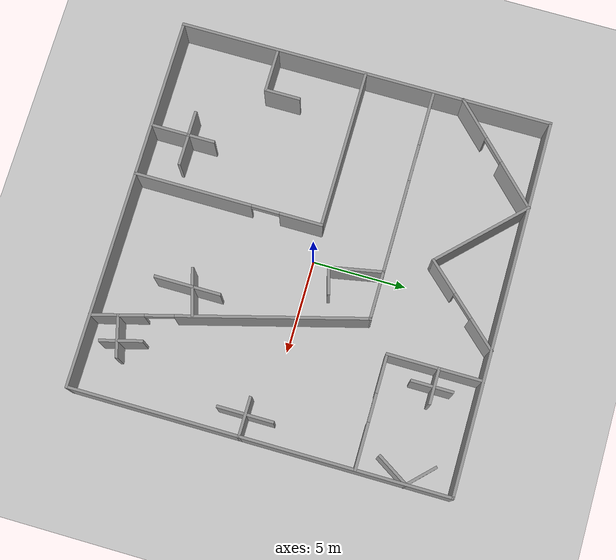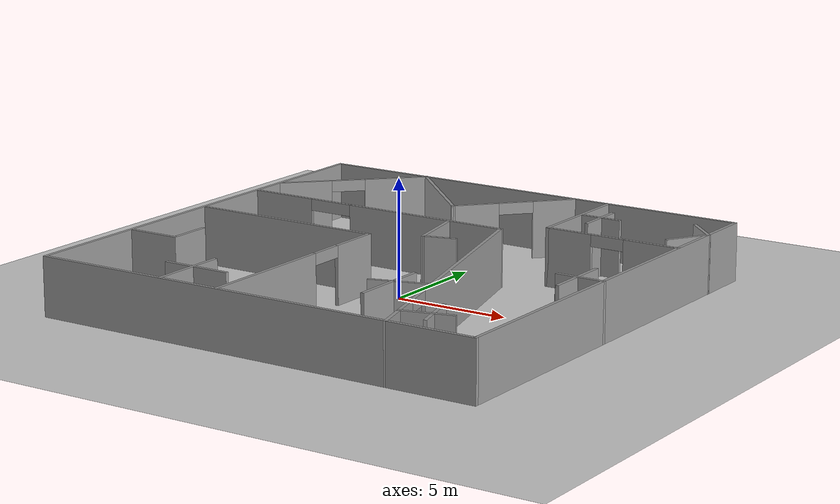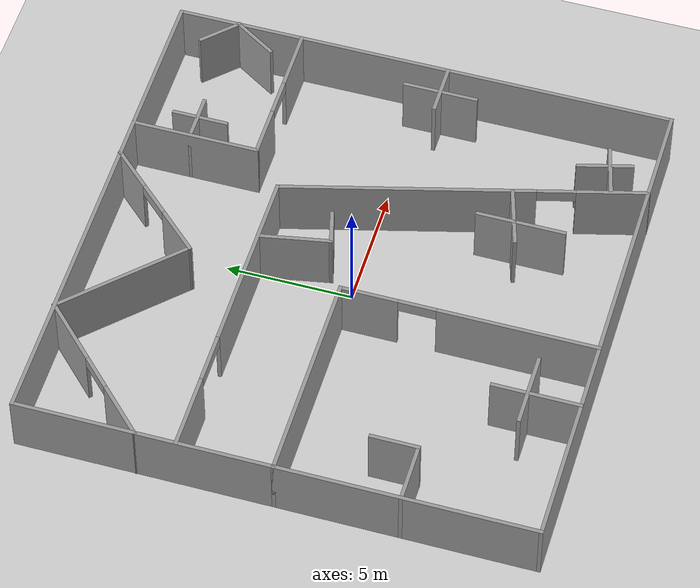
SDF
<sdf version="1.6">
 <world name="default">
  <light name="sun" type="directional">
   <pose>0 0 10 0 -0 0</pose>
   <diffuse>0.8 0.8 0.8 1</diffuse>
   <specular>0.2 0.2 0.2 1</specular>
   <attenuation>
    <range>1000</range>
    <constant>0.9</constant>
    <linear>0.01</linear>
    <quadratic>0.001</quadratic>
   </attenuation>
   <direction>-0.5 0.1 -0.9</direction>
  </light>
  <model name="ground_plane">
   <static>1</static>
   <link name="link">
    <collision name="collision">
     <geometry><plane><normal>0 0 1</normal><size>100 100</size></plane></geometry>
     <surface>
      <contact><collide_bitmask>65535</collide_bitmask></contact>
      <friction><ode><mu>100</mu><mu2>50</mu2></ode></friction>
     </surface>
    </collision>
    <visual name="visual">
     <cast_shadows>0</cast_shadows>
     <geometry><plane><normal>0 0 1</normal><size>100 100</size></plane></geometry>
     <material>
      <script><uri>file://media/materials/scripts/gazebo.material</uri><name>Gazebo/Grey</name></script>
     </material>
    </visual>
   </link>
  </model>
  <gravity>0 0 -9.8</gravity>
  <magnetic_field>6e-06 2.3e-05 -4.2e-05</magnetic_field>
  <atmosphere type="adiabatic"/>
  <physics name="default_physics" default="0" type="ode">
   <max_step_size>0.001</max_step_size>
   <real_time_factor>1</real_time_factor>
   <real_time_update_rate>1000</real_time_update_rate>
  </physics>
  <scene><ambient>0.4 0.4 0.4 1</ambient><background>0.7 0.7 0.7 1</background><shadows>1</shadows></scene>
  <audio><device>default</device></audio>
  <spherical_coordinates>
   <surface_model>EARTH_WGS84</surface_model>
   <latitude_deg>0</latitude_deg>
   <longitude_deg>0</longitude_deg>
   <elevation>0</elevation>
   <heading_deg>0</heading_deg>
  </spherical_coordinates>
  <model name="room_with_corner">
   <pose>0 0.007053 0 0 -0 0</pose>
   <link name="Wall_0">
    <collision name="Wall_0_Collision">
     <geometry><box><size>20.15 0.15 2.5</size></box></geometry>
     <pose>0 0 1.25 0 -0 0</pose>
    </collision>
    <visual name="Wall_0_Visual">
     <pose>0 0 1.25 0 -0 0</pose>
     <geometry><box><size>20.15 0.15 2.5</size></box></geometry>
     <material>
      <script><uri>file://media/materials/scripts/gazebo.material</uri><name>Gazebo/Grey</name></script>
      <ambient>1 1 1 1</ambient>
     </material>
     <meta><layer>0</layer></meta>
    </visual>
    <pose>0 9.99295 0 0 -0 0</pose>
   </link>
   <link name="Wall_1">
    <collision name="Wall_1_Collision">
     <geometry><box><size>20.15 0.15 2.5</size></box></geometry>
     <pose>0 0 1.25 0 -0 0</pose>
    </collision>
    <visual name="Wall_1_Visual">
     <pose>0 0 1.25 0 -0 0</pose>
     <geometry><box><size>20.15 0.15 2.5</size></box></geometry>
     <material>
      <script><uri>file://media/materials/scripts/gazebo.material</uri><name>Gazebo/Grey</name></script>
      <ambient>1 1 1 1</ambient>
     </material>
     <meta><layer>0</layer></meta>
    </visual>
    <pose>10 -0.007053 0 0 -0 -1.5708</pose>
   </link>
   <link name="Wall_11">
    <collision name="Wall_11_Collision">
     <geometry><box><size>3 0.15 2.5</size></box></geometry>
     <pose>0 0 1.25 0 -0 0</pose>
    </collision>
    <visual name="Wall_11_Visual">
     <pose>0 0 1.25 0 -0 0</pose>
     <geometry><box><size>3 0.15 2.5</size></box></geometry>
     <material>
      <script><uri>file://media/materials/scripts/gazebo.material</uri><name>Gazebo/Grey</name></script>
      <ambient>1 1 1 1</ambient>
     </material>
     <meta><layer>0</layer></meta>
    </visual>
    <pose>-4.05693 -7.98355 0 0 -0 0</pose>
   </link>
   <link name="Wall_13">
    <collision name="Wall_13_Collision">
     <geometry><box><size>3.523 0.15 2.5</size></box></geometry>
     <pose>0 0 1.25 0 -0 0</pose>
    </collision>
    <visual name="Wall_13_Visual">
     <pose>0 0 1.25 0 -0 0</pose>
     <geometry><box><size>3.523 0.15 2.5</size></box></geometry>
     <material>
      <script><uri>file://media/materials/scripts/gazebo.material</uri><name>Gazebo/Grey</name></script>
      <ambient>1 1 1 1</ambient>
     </material>
     <meta><layer>0</layer></meta>
    </visual>
    <pose>-4.226 -8.32055 0 0 -0 -1.5708</pose>
   </link>
   <link name="Wall_15">
    <pose>-3.75 3.69295 0 0 -0 0</pose>
    <visual name="Wall_15_Visual_0">
     <pose>-4.7875 0 1.25 0 -0 0</pose>
     <geometry><box><size>3.075 0.15 2.5</size></box></geometry>
     <material>
      <script><uri>file://media/materials/scripts/gazebo.material</uri><name>Gazebo/Grey</name></script>
      <ambient>1 1 1 1</ambient>
     </material>
     <meta><layer>0</layer></meta>
    </visual>
    <collision name="Wall_15_Collision_0">
     <geometry><box><size>3.075 0.15 2.5</size></box></geometry>
     <pose>-4.7875 0 1.25 0 -0 0</pose>
    </collision>
    <visual name="Wall_15_Visual_1">
     <pose>2.5375 0 1.25 0 -0 0</pose>
     <geometry><box><size>7.575 0.15 2.5</size></box></geometry>
     <material>
      <script><uri>file://media/materials/scripts/gazebo.material</uri><name>Gazebo/Grey</name></script>
      <ambient>1 1 1 1</ambient>
     </material>
     <meta><layer>0</layer></meta>
    </visual>
    <collision name="Wall_15_Collision_1">
     <geometry><box><size>7.575 0.15 2.5</size></box></geometry>
     <pose>2.5375 0 1.25 0 -0 0</pose>
    </collision>
    <visual name="Wall_15_Visual_2">
     <pose>-2.25 0 2.25 0 -0 0</pose>
     <geometry><box><size>2 0.15 0.5</size></box></geometry>
     <material>
      <script><uri>file://media/materials/scripts/gazebo.material</uri><name>Gazebo/Grey</name></script>
      <ambient>1 1 1 1</ambient>
     </material>
     <meta><layer>0</layer></meta>
    </visual>
    <collision name="Wall_15_Collision_2">
     <geometry><box><size>2 0.15 0.5</size></box></geometry>
     <pose>-2.25 0 2.25 0 -0 0</pose>
    </collision>
   </link>
   <link name="Wall_16">
    <pose>4.35 -3.15705 0 0 -0 -1.30702</pose>
    <visual name="Wall_16_Visual_0">
     <pose>-2.17103 0 1.25 0 -0 0</pose>
     <geometry><box><size>9.99878 0.15 2.5</size></box></geometry>
     <material>
      <script><uri>file://media/materials/scripts/gazebo.material</uri><name>Gazebo/Grey</name></script>
      <ambient>1 1 1 1</ambient>
     </material>
     <meta><layer>0</layer></meta>
    </visual>
    <collision name="Wall_16_Collision_0">
     <geometry><box><size>9.99878 0.15 2.5</size></box></geometry>
     <pose>-2.17103 0 1.25 0 -0 0</pose>
    </collision>
    <visual name="Wall_16_Visual_1">
     <pose>5.74939 0 1.25 0 -0 0</pose>
     <geometry><box><size>2.84206 0.15 2.5</size></box></geometry>
     <material>
      <script><uri>file://media/materials/scripts/gazebo.material</uri><name>Gazebo/Grey</name></script>
      <ambient>1 1 1 1</ambient>
     </material>
     <meta><layer>0</layer></meta>
    </visual>
    <collision name="Wall_16_Collision_1">
     <geometry><box><size>2.84206 0.15 2.5</size></box></geometry>
     <pose>5.74939 0 1.25 0 -0 0</pose>
    </collision>
    <visual name="Wall_16_Visual_2">
     <pose>3.57836 0 2.25 0 -0 0</pose>
     <geometry><box><size>1.5 0.15 0.5</size></box></geometry>
     <material>
      <script><uri>file://media/materials/scripts/gazebo.material</uri><name>Gazebo/Grey</name></script>
      <ambient>1 1 1 1</ambient>
     </material>
     <meta><layer>0</layer></meta>
    </visual>
    <collision name="Wall_16_Collision_2">
     <geometry><box><size>1.5 0.15 0.5</size></box></geometry>
     <pose>3.57836 0 2.25 0 -0 0</pose>
    </collision>
   </link>
   <link name="Wall_2">
    <collision name="Wall_2_Collision">
     <geometry><box><size>20.15 0.15 2.5</size></box></geometry>
     <pose>0 0 1.25 0 -0 0</pose>
    </collision>
    <visual name="Wall_2_Visual">
     <pose>0 0 1.25 0 -0 0</pose>
     <geometry><box><size>20.15 0.15 2.5</size></box></geometry>
     <material>
      <script><uri>file://media/materials/scripts/gazebo.material</uri><name>Gazebo/Grey</name></script>
      <ambient>1 1 1 1</ambient>
     </material>
     <meta><layer>0</layer></meta>
    </visual>
    <pose>0 -10.0071 0 0 -0 3.14159</pose>
   </link>
   <link name="Wall_20">
    <collision name="Wall_20_Collision">
     <geometry><box><size>5.15 0.15 2.5</size></box></geometry>
     <pose>0 0 1.25 0 -0 0</pose>
    </collision>
    <visual name="Wall_20_Visual">
     <pose>0 0 1.25 0 -0 0</pose>
     <geometry><box><size>5.15 0.15 2.5</size></box></geometry>
     <material>
      <script><uri>file://media/materials/scripts/gazebo.material</uri><name>Gazebo/Grey</name></script>
      <ambient>1 1 1 1</ambient>
     </material>
     <meta><layer>0</layer></meta>
    </visual>
    <pose>4 7.49295 0 0 -0 -1.5708</pose>
   </link>
   <link name="Wall_21">
    <pose>7 4.99295 0 0 -0 0</pose>
    <visual name="Wall_21_Visual_0">
     <pose>-2.01231 0 1.25 0 -0 0</pose>
     <geometry><box><size>2.12539 0.15 2.5</size></box></geometry>
     <material>
      <script><uri>file://media/materials/scripts/gazebo.material</uri><name>Gazebo/Grey</name></script>
      <ambient>1 1 1 1</ambient>
     </material>
     <meta><layer>0</layer></meta>
    </visual>
    <collision name="Wall_21_Collision_0">
     <geometry><box><size>2.12539 0.15 2.5</size></box></geometry>
     <pose>-2.01231 0 1.25 0 -0 0</pose>
    </collision>
    <visual name="Wall_21_Visual_1">
     <pose>1.81269 0 1.25 0 -0 0</pose>
     <geometry><box><size>2.52461 0.15 2.5</size></box></geometry>
     <material>
      <script><uri>file://media/materials/scripts/gazebo.material</uri><name>Gazebo/Grey</name></script>
      <ambient>1 1 1 1</ambient>
     </material>
     <meta><layer>0</layer></meta>
    </visual>
    <collision name="Wall_21_Collision_1">
     <geometry><box><size>2.52461 0.15 2.5</size></box></geometry>
     <pose>1.81269 0 1.25 0 -0 0</pose>
    </collision>
    <visual name="Wall_21_Visual_2">
     <pose>-0.199613 0 2.25 0 -0 0</pose>
     <geometry><box><size>1.5 0.15 0.5</size></box></geometry>
     <material>
      <script><uri>file://media/materials/scripts/gazebo.material</uri><name>Gazebo/Grey</name></script>
      <ambient>1 1 1 1</ambient>
     </material>
     <meta><layer>0</layer></meta>
    </visual>
    <collision name="Wall_21_Collision_2">
     <geometry><box><size>1.5 0.15 0.5</size></box></geometry>
     <pose>-0.199613 0 2.25 0 -0 0</pose>
    </collision>
   </link>
   <link name="Wall_23">
    <collision name="Wall_23_Collision">
     <geometry><box><size>1.95 0.15 2.5</size></box></geometry>
     <pose>0 0 1.25 0 -0 0</pose>
    </collision>
    <visual name="Wall_23_Visual">
     <pose>0 0 1.25 0 -0 0</pose>
     <geometry><box><size>1.95 0.15 2.5</size></box></geometry>
     <material>
      <script><uri>file://media/materials/scripts/gazebo.material</uri><name>Gazebo/Grey</name></script>
      <ambient>1 1 1 1</ambient>
     </material>
     <meta><layer>0</layer></meta>
    </visual>
    <pose>4.9 7.69295 0 0 -0 0</pose>
   </link>
   <link name="Wall_25">
    <collision name="Wall_25_Collision">
     <geometry><box><size>2.25 0.15 2.5</size></box></geometry>
     <pose>0 0 1.25 0 -0 0</pose>
    </collision>
    <visual name="Wall_25_Visual">
     <pose>0 0 1.25 0 -0 0</pose>
     <geometry><box><size>2.25 0.15 2.5</size></box></geometry>
     <material>
      <script><uri>file://media/materials/scripts/gazebo.material</uri><name>Gazebo/Grey</name></script>
      <ambient>1 1 1 1</ambient>
     </material>
     <meta><layer>0</layer></meta>
    </visual>
    <pose>4.95249 7.59264 0 0 -0 -1.5708</pose>
   </link>
   <link name="Wall_27">
    <collision name="Wall_27_Collision">
     <geometry><box><size>1.84706 0.15 2.5</size></box></geometry>
     <pose>0 0 1.25 0 -0 0</pose>
    </collision>
    <visual name="Wall_27_Visual">
     <pose>0 0 1.25 0 -0 0</pose>
     <geometry><box><size>1.84706 0.15 2.5</size></box></geometry>
     <material>
      <script><uri>file://media/materials/scripts/gazebo.material</uri><name>Gazebo/Grey</name></script>
      <ambient>1 1 1 1</ambient>
     </material>
     <meta><layer>0</layer></meta>
    </visual>
    <pose>9.4 8.19295 0 0 -0 2.35619</pose>
   </link>
   <link name="Wall_29">
    <collision name="Wall_29_Collision">
     <geometry><box><size>2.0368 0.15 2.5</size></box></geometry>
     <pose>0 0 1.25 0 -0 0</pose>
    </collision>
    <visual name="Wall_29_Visual">
     <pose>0 0 1.25 0 -0 0</pose>
     <geometry><box><size>2.0368 0.15 2.5</size></box></geometry>
     <material>
      <script><uri>file://media/materials/scripts/gazebo.material</uri><name>Gazebo/Grey</name></script>
      <ambient>1 1 1 1</ambient>
     </material>
     <meta><layer>0</layer></meta>
    </visual>
    <pose>9.5 6.79295 0 0 -0 -2.1294</pose>
   </link>
   <link name="Wall_3">
    <collision name="Wall_3_Collision">
     <geometry><box><size>20.15 0.15 2.5</size></box></geometry>
     <pose>0 0 1.25 0 -0 0</pose>
    </collision>
    <visual name="Wall_3_Visual">
     <pose>0 0 1.25 0 -0 0</pose>
     <geometry><box><size>20.15 0.15 2.5</size></box></geometry>
     <material>
      <script><uri>file://media/materials/scripts/gazebo.material</uri><name>Gazebo/Grey</name></script>
      <ambient>1 1 1 1</ambient>
     </material>
     <meta><layer>0</layer></meta>
    </visual>
    <pose>-10 -0.007053 0 0 -0 1.5708</pose>
   </link>
   <link name="Wall_31">
    <collision name="Wall_31_Collision">
     <geometry><box><size>2.55416 0.15 2.5</size></box></geometry>
     <pose>0 0 1.25 0 -0 0</pose>
    </collision>
    <visual name="Wall_31_Visual">
     <pose>0 0 1.25 0 -0 0</pose>
     <geometry><box><size>2.55416 0.15 2.5</size></box></geometry>
     <material>
      <script><uri>file://media/materials/scripts/gazebo.material</uri><name>Gazebo/Grey</name></script>
      <ambient>1 1 1 1</ambient>
     </material>
     <meta><layer>0</layer></meta>
    </visual>
    <pose>3.65 -5.35705 0 0 -0 0.295441</pose>
   </link>
   <link name="Wall_33">
    <collision name="Wall_33_Collision">
     <geometry><box><size>3.55 0.15 2.5</size></box></geometry>
     <pose>0 0 1.25 0 -0 0</pose>
    </collision>
    <visual name="Wall_33_Visual">
     <pose>0 0 1.25 0 -0 0</pose>
     <geometry><box><size>3.55 0.15 2.5</size></box></geometry>
     <material>
      <script><uri>file://media/materials/scripts/gazebo.material</uri><name>Gazebo/Grey</name></script>
      <ambient>1 1 1 1</ambient>
     </material>
     <meta><layer>0</layer></meta>
    </visual>
    <pose>3.4 -5.70705 0 0 -0 -1.5708</pose>
   </link>
   <link name="Wall_35">
    <pose>-7.65 7.64295 0 0 -0 0.785398</pose>
    <visual name="Wall_35_Visual_0">
     <pose>-2.18326 0 1.25 0 -0 0</pose>
     <geometry><box><size>2.43028 0.15 2.5</size></box></geometry>
     <material>
      <script><uri>file://media/materials/scripts/gazebo.material</uri><name>Gazebo/Grey</name></script>
      <ambient>1 1 1 1</ambient>
     </material>
     <meta><layer>0</layer></meta>
    </visual>
    <collision name="Wall_35_Collision_0">
     <geometry><box><size>2.43028 0.15 2.5</size></box></geometry>
     <pose>-2.18326 0 1.25 0 -0 0</pose>
    </collision>
    <visual name="Wall_35_Visual_1">
     <pose>1.96514 0 1.25 0 -0 0</pose>
     <geometry><box><size>2.86652 0.15 2.5</size></box></geometry>
     <material>
      <script><uri>file://media/materials/scripts/gazebo.material</uri><name>Gazebo/Grey</name></script>
      <ambient>1 1 1 1</ambient>
     </material>
     <meta><layer>0</layer></meta>
    </visual>
    <collision name="Wall_35_Collision_1">
     <geometry><box><size>2.86652 0.15 2.5</size></box></geometry>
     <pose>1.96514 0 1.25 0 -0 0</pose>
    </collision>
    <visual name="Wall_35_Visual_2">
     <pose>-0.218118 0 2.25 0 -0 0</pose>
     <geometry><box><size>1.5 0.15 0.5</size></box></geometry>
     <material>
      <script><uri>file://media/materials/scripts/gazebo.material</uri><name>Gazebo/Grey</name></script>
      <ambient>1 1 1 1</ambient>
     </material>
     <meta><layer>0</layer></meta>
    </visual>
    <collision name="Wall_35_Collision_2">
     <geometry><box><size>1.5 0.15 0.5</size></box></geometry>
     <pose>-0.218118 0 2.25 0 -0 0</pose>
    </collision>
   </link>
   <link name="Wall_36">
    <collision name="Wall_36_Collision">
     <geometry><box><size>5.80685 0.15 2.5</size></box></geometry>
     <pose>0 0 1.25 0 -0 0</pose>
    </collision>
    <visual name="Wall_36_Visual">
     <pose>0 0 1.25 0 -0 0</pose>
     <geometry><box><size>5.80685 0.15 2.5</size></box></geometry>
     <material>
      <script><uri>file://media/materials/scripts/gazebo.material</uri><name>Gazebo/Grey</name></script>
      <ambient>1 1 1 1</ambient>
     </material>
     <meta><layer>0</layer></meta>
    </visual>
    <pose>-3.3 7.99295 0 0 -0 -0.785398</pose>
   </link>
   <link name="Wall_37">
    <pose>0.55 7.99295 0 0 -0 0.824339</pose>
    <visual name="Wall_37_Visual_0">
     <pose>-1.74959 0 1.25 0 -0 0</pose>
     <geometry><box><size>2.09967 0.15 2.5</size></box></geometry>
     <material>
      <script><uri>file://media/materials/scripts/gazebo.material</uri><name>Gazebo/Grey</name></script>
      <ambient>1 1 1 1</ambient>
     </material>
     <meta><layer>0</layer></meta>
    </visual>
    <collision name="Wall_37_Collision_0">
     <geometry><box><size>2.09967 0.15 2.5</size></box></geometry>
     <pose>-1.74959 0 1.25 0 -0 0</pose>
    </collision>
    <visual name="Wall_37_Visual_1">
     <pose>1.79984 0 1.25 0 -0 0</pose>
     <geometry><box><size>1.99918 0.15 2.5</size></box></geometry>
     <material>
      <script><uri>file://media/materials/scripts/gazebo.material</uri><name>Gazebo/Grey</name></script>
      <ambient>1 1 1 1</ambient>
     </material>
     <meta><layer>0</layer></meta>
    </visual>
    <collision name="Wall_37_Collision_1">
     <geometry><box><size>1.99918 0.15 2.5</size></box></geometry>
     <pose>1.79984 0 1.25 0 -0 0</pose>
    </collision>
    <visual name="Wall_37_Visual_2">
     <pose>0.050244 0 2.25 0 -0 0</pose>
     <geometry><box><size>1.5 0.15 0.5</size></box></geometry>
     <material>
      <script><uri>file://media/materials/scripts/gazebo.material</uri><name>Gazebo/Grey</name></script>
      <ambient>1 1 1 1</ambient>
     </material>
     <meta><layer>0</layer></meta>
    </visual>
    <collision name="Wall_37_Collision_2">
     <geometry><box><size>1.5 0.15 0.5</size></box></geometry>
     <pose>0.050244 0 2.25 0 -0 0</pose>
    </collision>
   </link>
   <link name="Wall_39">
    <collision name="Wall_39_Collision">
     <geometry><box><size>2.15 0.15 2.5</size></box></geometry>
     <pose>0 0 1.25 0 -0 0</pose>
    </collision>
    <visual name="Wall_39_Visual">
     <pose>0 0 1.25 0 -0 0</pose>
     <geometry><box><size>2.15 0.15 2.5</size></box></geometry>
     <material>
      <script><uri>file://media/materials/scripts/gazebo.material</uri><name>Gazebo/Grey</name></script>
      <ambient>1 1 1 1</ambient>
     </material>
     <meta><layer>0</layer></meta>
    </visual>
    <pose>9 -1.00705 0 0 -0 0</pose>
   </link>
   <link name="Wall_41">
    <collision name="Wall_41_Collision">
     <geometry><box><size>3 0.15 2.5</size></box></geometry>
     <pose>0 0 1.25 0 -0 0</pose>
    </collision>
    <visual name="Wall_41_Visual">
     <pose>0 0 1.25 0 -0 0</pose>
     <geometry><box><size>3 0.15 2.5</size></box></geometry>
     <material>
      <script><uri>file://media/materials/scripts/gazebo.material</uri><name>Gazebo/Grey</name></script>
      <ambient>1 1 1 1</ambient>
     </material>
     <meta><layer>0</layer></meta>
    </visual>
    <pose>8.8605 -1.01709 0 0 -0 -1.5708</pose>
   </link>
   <link name="Wall_43">
    <collision name="Wall_43_Collision">
     <geometry><box><size>2.25 0.15 2.5</size></box></geometry>
     <pose>0 0 1.25 0 -0 0</pose>
    </collision>
    <visual name="Wall_43_Visual">
     <pose>0 0 1.25 0 -0 0</pose>
     <geometry><box><size>2.25 0.15 2.5</size></box></geometry>
     <material>
      <script><uri>file://media/materials/scripts/gazebo.material</uri><name>Gazebo/Grey</name></script>
      <ambient>1 1 1 1</ambient>
     </material>
     <meta><layer>0</layer></meta>
    </visual>
    <pose>6.85067 -8.34597 0 0 -0 0.261799</pose>
   </link>
   <link name="Wall_45">
    <collision name="Wall_45_Collision">
     <geometry><box><size>2.25 0.15 2.5</size></box></geometry>
     <pose>0 0 1.25 0 -0 0</pose>
    </collision>
    <visual name="Wall_45_Visual">
     <pose>0 0 1.25 0 -0 0</pose>
     <geometry><box><size>2.25 0.15 2.5</size></box></geometry>
     <material>
      <script><uri>file://media/materials/scripts/gazebo.material</uri><name>Gazebo/Grey</name></script>
      <ambient>1 1 1 1</ambient>
     </material>
     <meta><layer>0</layer></meta>
    </visual>
    <pose>7.03868 -8.09666 0 0 -0 -1.309</pose>
   </link>
   <link name="Wall_47">
    <collision name="Wall_47_Collision">
     <geometry><box><size>2.93512 0.15 2.5</size></box></geometry>
     <pose>0 0 1.25 0 -0 0</pose>
    </collision>
    <visual name="Wall_47_Visual">
     <pose>0 0 1.25 0 -0 0</pose>
     <geometry><box><size>2.93512 0.15 2.5</size></box></geometry>
     <material>
      <script><uri>file://media/materials/scripts/gazebo.material</uri><name>Gazebo/Grey</name></script>
      <ambient>1 1 1 1</ambient>
     </material>
     <meta><layer>0</layer></meta>
    </visual>
    <pose>0.263 2.32545 0 0 -0 -1.38079</pose>
   </link>
   <link name="Wall_48">
    <collision name="Wall_48_Collision">
     <geometry><box><size>1.5 0.15 2.5</size></box></geometry>
     <pose>0 0 1.25 0 -0 0</pose>
    </collision>
    <visual name="Wall_48_Visual">
     <pose>0 0 1.25 0 -0 0</pose>
     <geometry><box><size>1.5 0.15 2.5</size></box></geometry>
     <material>
      <script><uri>file://media/materials/scripts/gazebo.material</uri><name>Gazebo/Grey</name></script>
      <ambient>1 1 1 1</ambient>
     </material>
     <meta><layer>0</layer></meta>
    </visual>
    <pose>1.17798 1.13279 0 0 -0 0.262</pose>
   </link>
   <link name="Wall_5">
    <collision name="Wall_5_Collision">
     <geometry><box><size>8.65 0.15 2.5</size></box></geometry>
     <pose>0 0 1.25 0 -0 0</pose>
    </collision>
    <visual name="Wall_5_Visual">
     <pose>0 0 1.25 0 -0 0</pose>
     <geometry><box><size>8.65 0.15 2.5</size></box></geometry>
     <material>
      <script><uri>file://media/materials/scripts/gazebo.material</uri><name>Gazebo/Grey</name></script>
      <ambient>1 1 1 1</ambient>
     </material>
     <meta><layer>0</layer></meta>
    </visual>
    <pose>-5.75 -0.007053 0 0 -0 0</pose>
   </link>
   <link name="Wall_6">
    <pose>-1.5 -5.00705 0 0 -0 -1.5708</pose>
    <visual name="Wall_6_Visual_0">
     <pose>-3.9125 0 1.25 0 -0 0</pose>
     <geometry><box><size>2.325 0.15 2.5</size></box></geometry>
     <material>
      <script><uri>file://media/materials/scripts/gazebo.material</uri><name>Gazebo/Grey</name></script>
      <ambient>1 1 1 1</ambient>
     </material>
     <meta><layer>0</layer></meta>
    </visual>
    <collision name="Wall_6_Collision_0">
     <geometry><box><size>2.325 0.15 2.5</size></box></geometry>
     <pose>-3.9125 0 1.25 0 -0 0</pose>
    </collision>
    <visual name="Wall_6_Visual_1">
     <pose>1.9125 0 1.25 0 -0 0</pose>
     <geometry><box><size>6.325 0.15 2.5</size></box></geometry>
     <material>
      <script><uri>file://media/materials/scripts/gazebo.material</uri><name>Gazebo/Grey</name></script>
      <ambient>1 1 1 1</ambient>
     </material>
     <meta><layer>0</layer></meta>
    </visual>
    <collision name="Wall_6_Collision_1">
     <geometry><box><size>6.325 0.15 2.5</size></box></geometry>
     <pose>1.9125 0 1.25 0 -0 0</pose>
    </collision>
    <visual name="Wall_6_Visual_2">
     <pose>-2 0 2.25 0 -0 0</pose>
     <geometry><box><size>1.5 0.15 0.5</size></box></geometry>
     <material>
      <script><uri>file://media/materials/scripts/gazebo.material</uri><name>Gazebo/Grey</name></script>
      <ambient>1 1 1 1</ambient>
     </material>
     <meta><layer>0</layer></meta>
    </visual>
    <collision name="Wall_6_Collision_2">
     <geometry><box><size>1.5 0.15 0.5</size></box></geometry>
     <pose>-2 0 2.25 0 -0 0</pose>
    </collision>
   </link>
   <link name="Wall_8">
    <collision name="Wall_8_Collision">
     <geometry><box><size>2.45 0.15 2.5</size></box></geometry>
     <pose>0 0 1.25 0 -0 0</pose>
    </collision>
    <visual name="Wall_8_Visual">
     <pose>0 0 1.25 0 -0 0</pose>
     <geometry><box><size>2.45 0.15 2.5</size></box></geometry>
     <material>
      <script><uri>file://media/materials/scripts/gazebo.material</uri><name>Gazebo/Grey</name></script>
      <ambient>1 1 1 1</ambient>
     </material>
     <meta><layer>0</layer></meta>
    </visual>
    <pose>-8.85 -4.80705 0 0 -0 0</pose>
   </link>
   <link name="Wall_9">
    <collision name="Wall_9_Collision">
     <geometry><box><size>1.95 0.15 2.5</size></box></geometry>
     <pose>0 0 1.25 0 -0 0</pose>
    </collision>
    <visual name="Wall_9_Visual">
     <pose>0 0 1.25 0 -0 0</pose>
     <geometry><box><size>1.95 0.15 2.5</size></box></geometry>
     <material>
      <script><uri>file://media/materials/scripts/gazebo.material</uri><name>Gazebo/Grey</name></script>
      <ambient>1 1 1 1</ambient>
     </material>
     <meta><layer>0</layer></meta>
    </visual>
    <pose>-7.7 -3.90705 0 0 -0 1.5708</pose>
   </link>
   <static>1</static>
  </model>
  <plugin name="gazebo_occupancy_map" filename="libgazebo_2Dmap_plugin.so">
   <map_resolution>0.1</map_resolution>
   <map_height>0.3</map_height>
   <map_size_x>25</map_size_x>
   <map_size_y>25</map_size_y>
   <init_robot_x>0</init_robot_x>
   <init_robot_y>0</init_robot_y>
  </plugin>
 </world>
</sdf>
